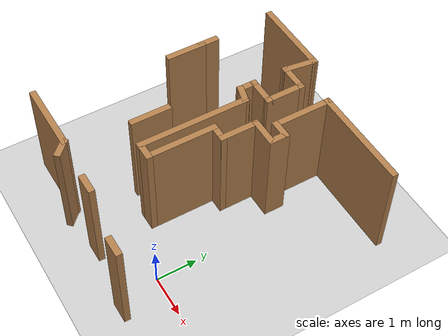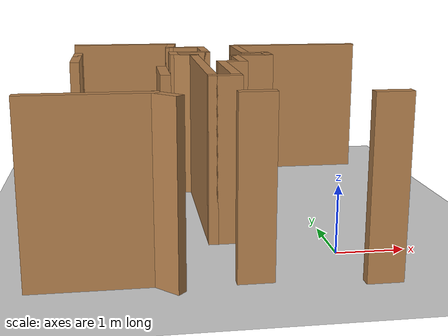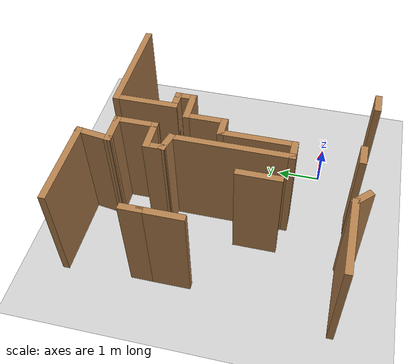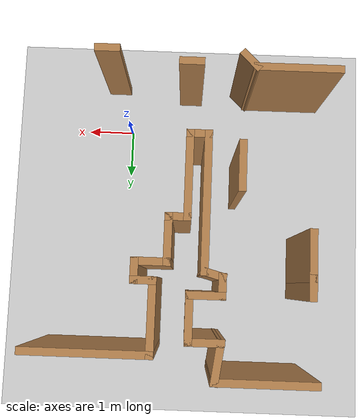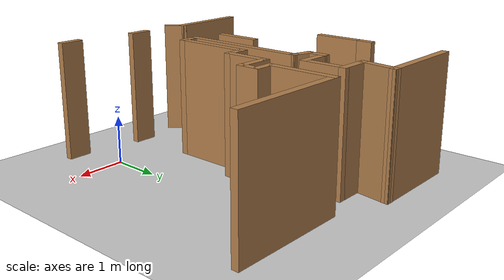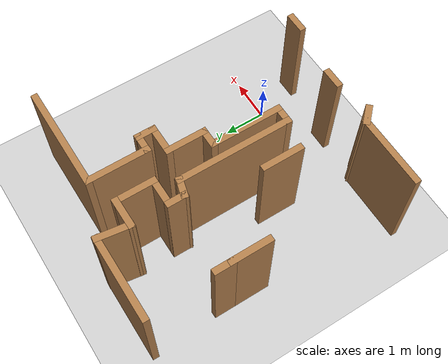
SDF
<sdf version="1.6">
 <world name="default">
  <model name="ground_plane">
   <static>1</static>
   <link name="link">
    <collision name="collision">
     <geometry><plane><normal>0 0 1</normal><size>100 100</size></plane></geometry>
     <surface><friction><ode><mu>100</mu><mu2>50</mu2></ode></friction></surface>
    </collision>
    <visual name="visual">
     <cast_shadows>0</cast_shadows>
     <geometry><plane><normal>0 0 1</normal><size>100 100</size></plane></geometry>
     <material>
      <script><uri>file://media/materials/scripts/gazebo.material</uri><name>Gazebo/Grey</name></script>
     </material>
    </visual>
   </link>
  </model>
  <model name="map_30">
   <link name="Wall_153">
    <pose>0.680059 5.21618 0 0 -0 3.14159</pose>
    <visual name="Wall_153_Visual">
     <pose>0 0 1.25 0 -0 0</pose>
     <geometry><box><size>2.5 0.15 2.5</size></box></geometry>
     <material>
      <script><uri>file://media/materials/scripts/gazebo.material</uri><name>Gazebo/Wood</name></script>
      <ambient>1 1 1 1</ambient>
      <shader type="pixel"/>
     </material>
     <meta><layer>0</layer></meta>
    </visual>
    <collision name="Wall_153_Collision">
     <pose>0 0 1.25 0 -0 0</pose>
     <geometry><box><size>2.5 0.15 2.5</size></box></geometry>
     <surface>
      <friction>
       <ode><mu>1</mu><mu2>1</mu2><fdir1>0 0 0</fdir1><slip1>0</slip1><slip2>0</slip2></ode>
       <torsional>
        <coefficient>1</coefficient>
        <patch_radius>0</patch_radius>
        <surface_radius>0</surface_radius>
        <use_patch_radius>1</use_patch_radius>
        <ode><slip>0</slip></ode>
       </torsional>
      </friction>
      <bounce><restitution_coefficient>0</restitution_coefficient><threshold>1e+06</threshold></bounce>
      <contact>
       <collide_without_contact>0</collide_without_contact>
       <collide_without_contact_bitmask>1</collide_without_contact_bitmask>
       <collide_bitmask>1</collide_bitmask>
       <ode>
        <soft_cfm>0</soft_cfm>
        <soft_erp>0.2</soft_erp>
        <kp>1e+13</kp>
        <kd>1</kd>
        <max_vel>0.01</max_vel>
        <min_depth>0</min_depth>
       </ode>
       <bullet>
        <split_impulse>1</split_impulse>
        <split_impulse_penetration_threshold>-0.01</split_impulse_penetration_threshold>
        <soft_cfm>0</soft_cfm>
        <soft_erp>0.2</soft_erp>
        <kp>1e+13</kp>
        <kd>1</kd>
       </bullet>
      </contact>
     </surface>
    </collision>
   </link>
   <link name="Wall_154">
    <pose>-0.494941 4.54118 0 0 0 -1.5708</pose>
    <visual name="Wall_154_Visual">
     <pose>0 0 1.25 0 -0 0</pose>
     <geometry><box><size>1.5 0.15 2.5</size></box></geometry>
     <material>
      <script><uri>file://media/materials/scripts/gazebo.material</uri><name>Gazebo/Wood</name></script>
      <ambient>1 1 1 1</ambient>
      <shader type="pixel"/>
     </material>
     <meta><layer>0</layer></meta>
    </visual>
    <collision name="Wall_154_Collision">
     <pose>0 0 1.25 0 -0 0</pose>
     <geometry><box><size>1.5 0.15 2.5</size></box></geometry>
     <surface>
      <friction>
       <ode><mu>1</mu><mu2>1</mu2><fdir1>0 0 0</fdir1><slip1>0</slip1><slip2>0</slip2></ode>
       <torsional>
        <coefficient>1</coefficient>
        <patch_radius>0</patch_radius>
        <surface_radius>0</surface_radius>
        <use_patch_radius>1</use_patch_radius>
        <ode><slip>0</slip></ode>
       </torsional>
      </friction>
      <bounce><restitution_coefficient>0</restitution_coefficient><threshold>1e+06</threshold></bounce>
      <contact>
       <collide_without_contact>0</collide_without_contact>
       <collide_without_contact_bitmask>1</collide_without_contact_bitmask>
       <collide_bitmask>1</collide_bitmask>
       <ode>
        <soft_cfm>0</soft_cfm>
        <soft_erp>0.2</soft_erp>
        <kp>1e+13</kp>
        <kd>1</kd>
        <max_vel>0.01</max_vel>
        <min_depth>0</min_depth>
       </ode>
       <bullet>
        <split_impulse>1</split_impulse>
        <split_impulse_penetration_threshold>-0.01</split_impulse_penetration_threshold>
        <soft_cfm>0</soft_cfm>
        <soft_erp>0.2</soft_erp>
        <kp>1e+13</kp>
        <kd>1</kd>
       </bullet>
      </contact>
     </surface>
    </collision>
   </link>
   <link name="Wall_155">
    <pose>-0.319941 3.86618 0 0 -0 0</pose>
    <visual name="Wall_155_Visual">
     <pose>0 0 1.25 0 -0 0</pose>
     <geometry><box><size>0.5 0.15 2.5</size></box></geometry>
     <material>
      <script><uri>file://media/materials/scripts/gazebo.material</uri><name>Gazebo/Wood</name></script>
      <ambient>1 1 1 1</ambient>
      <shader type="pixel"/>
     </material>
     <meta><layer>0</layer></meta>
    </visual>
    <collision name="Wall_155_Collision">
     <pose>0 0 1.25 0 -0 0</pose>
     <geometry><box><size>0.5 0.15 2.5</size></box></geometry>
     <surface>
      <friction>
       <ode><mu>1</mu><mu2>1</mu2><fdir1>0 0 0</fdir1><slip1>0</slip1><slip2>0</slip2></ode>
       <torsional>
        <coefficient>1</coefficient>
        <patch_radius>0</patch_radius>
        <surface_radius>0</surface_radius>
        <use_patch_radius>1</use_patch_radius>
        <ode><slip>0</slip></ode>
       </torsional>
      </friction>
      <bounce><restitution_coefficient>0</restitution_coefficient><threshold>1e+06</threshold></bounce>
      <contact>
       <collide_without_contact>0</collide_without_contact>
       <collide_without_contact_bitmask>1</collide_without_contact_bitmask>
       <collide_bitmask>1</collide_bitmask>
       <ode>
        <soft_cfm>0</soft_cfm>
        <soft_erp>0.2</soft_erp>
        <kp>1e+13</kp>
        <kd>1</kd>
        <max_vel>0.01</max_vel>
        <min_depth>0</min_depth>
       </ode>
       <bullet>
        <split_impulse>1</split_impulse>
        <split_impulse_penetration_threshold>-0.01</split_impulse_penetration_threshold>
        <soft_cfm>0</soft_cfm>
        <soft_erp>0.2</soft_erp>
        <kp>1e+13</kp>
        <kd>1</kd>
       </bullet>
      </contact>
     </surface>
    </collision>
   </link>
   <link name="Wall_156">
    <pose>-0.14494 3.69118 0 0 0 -1.5708</pose>
    <visual name="Wall_156_Visual">
     <pose>0 0 1.25 0 -0 0</pose>
     <geometry><box><size>0.5 0.15 2.5</size></box></geometry>
     <material>
      <script><uri>file://media/materials/scripts/gazebo.material</uri><name>Gazebo/Wood</name></script>
      <ambient>1 1 1 1</ambient>
      <shader type="pixel"/>
     </material>
     <meta><layer>0</layer></meta>
    </visual>
    <collision name="Wall_156_Collision">
     <pose>0 0 1.25 0 -0 0</pose>
     <geometry><box><size>0.5 0.15 2.5</size></box></geometry>
     <surface>
      <friction>
       <ode><mu>1</mu><mu2>1</mu2><fdir1>0 0 0</fdir1><slip1>0</slip1><slip2>0</slip2></ode>
       <torsional>
        <coefficient>1</coefficient>
        <patch_radius>0</patch_radius>
        <surface_radius>0</surface_radius>
        <use_patch_radius>1</use_patch_radius>
        <ode><slip>0</slip></ode>
       </torsional>
      </friction>
      <bounce><restitution_coefficient>0</restitution_coefficient><threshold>1e+06</threshold></bounce>
      <contact>
       <collide_without_contact>0</collide_without_contact>
       <collide_without_contact_bitmask>1</collide_without_contact_bitmask>
       <collide_bitmask>1</collide_bitmask>
       <ode>
        <soft_cfm>0</soft_cfm>
        <soft_erp>0.2</soft_erp>
        <kp>1e+13</kp>
        <kd>1</kd>
        <max_vel>0.01</max_vel>
        <min_depth>0</min_depth>
       </ode>
       <bullet>
        <split_impulse>1</split_impulse>
        <split_impulse_penetration_threshold>-0.01</split_impulse_penetration_threshold>
        <soft_cfm>0</soft_cfm>
        <soft_erp>0.2</soft_erp>
        <kp>1e+13</kp>
        <kd>1</kd>
       </bullet>
      </contact>
     </surface>
    </collision>
   </link>
   <link name="Wall_157">
    <pose>-0.444941 3.51618 0 0 -0 3.14159</pose>
    <visual name="Wall_157_Visual">
     <pose>0 0 1.25 0 -0 0</pose>
     <geometry><box><size>0.75 0.15 2.5</size></box></geometry>
     <material>
      <script><uri>file://media/materials/scripts/gazebo.material</uri><name>Gazebo/Wood</name></script>
      <ambient>1 1 1 1</ambient>
      <shader type="pixel"/>
     </material>
     <meta><layer>0</layer></meta>
    </visual>
    <collision name="Wall_157_Collision">
     <pose>0 0 1.25 0 -0 0</pose>
     <geometry><box><size>0.75 0.15 2.5</size></box></geometry>
     <surface>
      <friction>
       <ode><mu>1</mu><mu2>1</mu2><fdir1>0 0 0</fdir1><slip1>0</slip1><slip2>0</slip2></ode>
       <torsional>
        <coefficient>1</coefficient>
        <patch_radius>0</patch_radius>
        <surface_radius>0</surface_radius>
        <use_patch_radius>1</use_patch_radius>
        <ode><slip>0</slip></ode>
       </torsional>
      </friction>
      <bounce><restitution_coefficient>0</restitution_coefficient><threshold>1e+06</threshold></bounce>
      <contact>
       <collide_without_contact>0</collide_without_contact>
       <collide_without_contact_bitmask>1</collide_without_contact_bitmask>
       <collide_bitmask>1</collide_bitmask>
       <ode>
        <soft_cfm>0</soft_cfm>
        <soft_erp>0.2</soft_erp>
        <kp>1e+13</kp>
        <kd>1</kd>
        <max_vel>0.01</max_vel>
        <min_depth>0</min_depth>
       </ode>
       <bullet>
        <split_impulse>1</split_impulse>
        <split_impulse_penetration_threshold>-0.01</split_impulse_penetration_threshold>
        <soft_cfm>0</soft_cfm>
        <soft_erp>0.2</soft_erp>
        <kp>1e+13</kp>
        <kd>1</kd>
       </bullet>
      </contact>
     </surface>
    </collision>
   </link>
   <link name="Wall_158">
    <pose>-0.744941 3.09118 0 0 0 -1.5708</pose>
    <visual name="Wall_158_Visual">
     <pose>0 0 1.25 0 -0 0</pose>
     <geometry><box><size>1 0.15 2.5</size></box></geometry>
     <material>
      <script><uri>file://media/materials/scripts/gazebo.material</uri><name>Gazebo/Wood</name></script>
      <ambient>1 1 1 1</ambient>
      <shader type="pixel"/>
     </material>
     <meta><layer>0</layer></meta>
    </visual>
    <collision name="Wall_158_Collision">
     <pose>0 0 1.25 0 -0 0</pose>
     <geometry><box><size>1 0.15 2.5</size></box></geometry>
     <surface>
      <friction>
       <ode><mu>1</mu><mu2>1</mu2><fdir1>0 0 0</fdir1><slip1>0</slip1><slip2>0</slip2></ode>
       <torsional>
        <coefficient>1</coefficient>
        <patch_radius>0</patch_radius>
        <surface_radius>0</surface_radius>
        <use_patch_radius>1</use_patch_radius>
        <ode><slip>0</slip></ode>
       </torsional>
      </friction>
      <bounce><restitution_coefficient>0</restitution_coefficient><threshold>1e+06</threshold></bounce>
      <contact>
       <collide_without_contact>0</collide_without_contact>
       <collide_without_contact_bitmask>1</collide_without_contact_bitmask>
       <collide_bitmask>1</collide_bitmask>
       <ode>
        <soft_cfm>0</soft_cfm>
        <soft_erp>0.2</soft_erp>
        <kp>1e+13</kp>
        <kd>1</kd>
        <max_vel>0.01</max_vel>
        <min_depth>0</min_depth>
       </ode>
       <bullet>
        <split_impulse>1</split_impulse>
        <split_impulse_penetration_threshold>-0.01</split_impulse_penetration_threshold>
        <soft_cfm>0</soft_cfm>
        <soft_erp>0.2</soft_erp>
        <kp>1e+13</kp>
        <kd>1</kd>
       </bullet>
      </contact>
     </surface>
    </collision>
   </link>
   <link name="Wall_16">
    <pose>-3.45506 3.89815 0 0 0 -1.5708</pose>
    <visual name="Wall_16_Visual">
     <pose>0 0 1.25 0 -0 0</pose>
     <geometry><box><size>0.5 0.15 2.5</size></box></geometry>
     <material>
      <script><uri>file://media/materials/scripts/gazebo.material</uri><name>Gazebo/Wood</name></script>
      <ambient>1 1 1 1</ambient>
      <shader type="pixel"/>
     </material>
     <meta><layer>0</layer></meta>
    </visual>
    <collision name="Wall_16_Collision">
     <pose>0 0 1.25 0 -0 0</pose>
     <geometry><box><size>0.5 0.15 2.5</size></box></geometry>
     <surface>
      <friction>
       <ode><mu>1</mu><mu2>1</mu2><fdir1>0 0 0</fdir1><slip1>0</slip1><slip2>0</slip2></ode>
       <torsional>
        <coefficient>1</coefficient>
        <patch_radius>0</patch_radius>
        <surface_radius>0</surface_radius>
        <use_patch_radius>1</use_patch_radius>
        <ode><slip>0</slip></ode>
       </torsional>
      </friction>
      <bounce><restitution_coefficient>0</restitution_coefficient><threshold>1e+06</threshold></bounce>
      <contact>
       <collide_without_contact>0</collide_without_contact>
       <collide_without_contact_bitmask>1</collide_without_contact_bitmask>
       <collide_bitmask>1</collide_bitmask>
       <ode>
        <soft_cfm>0</soft_cfm>
        <soft_erp>0.2</soft_erp>
        <kp>1e+13</kp>
        <kd>1</kd>
        <max_vel>0.01</max_vel>
        <min_depth>0</min_depth>
       </ode>
       <bullet>
        <split_impulse>1</split_impulse>
        <split_impulse_penetration_threshold>-0.01</split_impulse_penetration_threshold>
        <soft_cfm>0</soft_cfm>
        <soft_erp>0.2</soft_erp>
        <kp>1e+13</kp>
        <kd>1</kd>
       </bullet>
      </contact>
     </surface>
    </collision>
   </link>
   <link name="Wall_161">
    <pose>-0.919941 2.66618 0 0 -0 3.14159</pose>
    <visual name="Wall_161_Visual">
     <pose>0 0 1.25 0 -0 0</pose>
     <geometry><box><size>0.5 0.15 2.5</size></box></geometry>
     <material>
      <script><uri>file://media/materials/scripts/gazebo.material</uri><name>Gazebo/Wood</name></script>
      <ambient>1 1 1 1</ambient>
      <shader type="pixel"/>
     </material>
     <meta><layer>0</layer></meta>
    </visual>
    <collision name="Wall_161_Collision">
     <pose>0 0 1.25 0 -0 0</pose>
     <geometry><box><size>0.5 0.15 2.5</size></box></geometry>
     <surface>
      <friction>
       <ode><mu>1</mu><mu2>1</mu2><fdir1>0 0 0</fdir1><slip1>0</slip1><slip2>0</slip2></ode>
       <torsional>
        <coefficient>1</coefficient>
        <patch_radius>0</patch_radius>
        <surface_radius>0</surface_radius>
        <use_patch_radius>1</use_patch_radius>
        <ode><slip>0</slip></ode>
       </torsional>
      </friction>
      <bounce><restitution_coefficient>0</restitution_coefficient><threshold>1e+06</threshold></bounce>
      <contact>
       <collide_without_contact>0</collide_without_contact>
       <collide_without_contact_bitmask>1</collide_without_contact_bitmask>
       <collide_bitmask>1</collide_bitmask>
       <ode>
        <soft_cfm>0</soft_cfm>
        <soft_erp>0.2</soft_erp>
        <kp>1e+13</kp>
        <kd>1</kd>
        <max_vel>0.01</max_vel>
        <min_depth>0</min_depth>
       </ode>
       <bullet>
        <split_impulse>1</split_impulse>
        <split_impulse_penetration_threshold>-0.01</split_impulse_penetration_threshold>
        <soft_cfm>0</soft_cfm>
        <soft_erp>0.2</soft_erp>
        <kp>1e+13</kp>
        <kd>1</kd>
       </bullet>
      </contact>
     </surface>
    </collision>
   </link>
   <link name="Wall_162">
    <pose>-1.09494 1.86618 0 0 0 -1.5708</pose>
    <visual name="Wall_162_Visual">
     <pose>0 0 1.25 0 -0 0</pose>
     <geometry><box><size>1.75 0.15 2.5</size></box></geometry>
     <material>
      <script><uri>file://media/materials/scripts/gazebo.material</uri><name>Gazebo/Wood</name></script>
      <ambient>1 1 1 1</ambient>
      <shader type="pixel"/>
     </material>
     <meta><layer>0</layer></meta>
    </visual>
    <collision name="Wall_162_Collision">
     <pose>0 0 1.25 0 -0 0</pose>
     <geometry><box><size>1.75 0.15 2.5</size></box></geometry>
     <surface>
      <friction>
       <ode><mu>1</mu><mu2>1</mu2><fdir1>0 0 0</fdir1><slip1>0</slip1><slip2>0</slip2></ode>
       <torsional>
        <coefficient>1</coefficient>
        <patch_radius>0</patch_radius>
        <surface_radius>0</surface_radius>
        <use_patch_radius>1</use_patch_radius>
        <ode><slip>0</slip></ode>
       </torsional>
      </friction>
      <bounce><restitution_coefficient>0</restitution_coefficient><threshold>1e+06</threshold></bounce>
      <contact>
       <collide_without_contact>0</collide_without_contact>
       <collide_without_contact_bitmask>1</collide_without_contact_bitmask>
       <collide_bitmask>1</collide_bitmask>
       <ode>
        <soft_cfm>0</soft_cfm>
        <soft_erp>0.2</soft_erp>
        <kp>1e+13</kp>
        <kd>1</kd>
        <max_vel>0.01</max_vel>
        <min_depth>0</min_depth>
       </ode>
       <bullet>
        <split_impulse>1</split_impulse>
        <split_impulse_penetration_threshold>-0.01</split_impulse_penetration_threshold>
        <soft_cfm>0</soft_cfm>
        <soft_erp>0.2</soft_erp>
        <kp>1e+13</kp>
        <kd>1</kd>
       </bullet>
      </contact>
     </surface>
    </collision>
   </link>
   <link name="Wall_163">
    <pose>-1.26994 1.06618 0 0 -0 3.14159</pose>
    <visual name="Wall_163_Visual">
     <pose>0 0 1.25 0 -0 0</pose>
     <geometry><box><size>0.5 0.15 2.5</size></box></geometry>
     <material>
      <script><uri>file://media/materials/scripts/gazebo.material</uri><name>Gazebo/Wood</name></script>
      <ambient>1 1 1 1</ambient>
      <shader type="pixel"/>
     </material>
     <meta><layer>0</layer></meta>
    </visual>
    <collision name="Wall_163_Collision">
     <pose>0 0 1.25 0 -0 0</pose>
     <geometry><box><size>0.5 0.15 2.5</size></box></geometry>
     <surface>
      <friction>
       <ode><mu>1</mu><mu2>1</mu2><fdir1>0 0 0</fdir1><slip1>0</slip1><slip2>0</slip2></ode>
       <torsional>
        <coefficient>1</coefficient>
        <patch_radius>0</patch_radius>
        <surface_radius>0</surface_radius>
        <use_patch_radius>1</use_patch_radius>
        <ode><slip>0</slip></ode>
       </torsional>
      </friction>
      <bounce><restitution_coefficient>0</restitution_coefficient><threshold>1e+06</threshold></bounce>
      <contact>
       <collide_without_contact>0</collide_without_contact>
       <collide_without_contact_bitmask>1</collide_without_contact_bitmask>
       <collide_bitmask>1</collide_bitmask>
       <ode>
        <soft_cfm>0</soft_cfm>
        <soft_erp>0.2</soft_erp>
        <kp>1e+13</kp>
        <kd>1</kd>
        <max_vel>0.01</max_vel>
        <min_depth>0</min_depth>
       </ode>
       <bullet>
        <split_impulse>1</split_impulse>
        <split_impulse_penetration_threshold>-0.01</split_impulse_penetration_threshold>
        <soft_cfm>0</soft_cfm>
        <soft_erp>0.2</soft_erp>
        <kp>1e+13</kp>
        <kd>1</kd>
       </bullet>
      </contact>
     </surface>
    </collision>
   </link>
   <link name="Wall_164">
    <pose>-1.44494 2.36618 0 0 -0 1.5708</pose>
    <visual name="Wall_164_Visual">
     <pose>0 0 1.25 0 -0 0</pose>
     <geometry><box><size>2.75 0.15 2.5</size></box></geometry>
     <material>
      <script><uri>file://media/materials/scripts/gazebo.material</uri><name>Gazebo/Wood</name></script>
      <ambient>1 1 1 1</ambient>
      <shader type="pixel"/>
     </material>
     <meta><layer>0</layer></meta>
    </visual>
    <collision name="Wall_164_Collision">
     <pose>0 0 1.25 0 -0 0</pose>
     <geometry><box><size>2.75 0.15 2.5</size></box></geometry>
     <surface>
      <friction>
       <ode><mu>1</mu><mu2>1</mu2><fdir1>0 0 0</fdir1><slip1>0</slip1><slip2>0</slip2></ode>
       <torsional>
        <coefficient>1</coefficient>
        <patch_radius>0</patch_radius>
        <surface_radius>0</surface_radius>
        <use_patch_radius>1</use_patch_radius>
        <ode><slip>0</slip></ode>
       </torsional>
      </friction>
      <bounce><restitution_coefficient>0</restitution_coefficient><threshold>1e+06</threshold></bounce>
      <contact>
       <collide_without_contact>0</collide_without_contact>
       <collide_without_contact_bitmask>1</collide_without_contact_bitmask>
       <collide_bitmask>1</collide_bitmask>
       <ode>
        <soft_cfm>0</soft_cfm>
        <soft_erp>0.2</soft_erp>
        <kp>1e+13</kp>
        <kd>1</kd>
        <max_vel>0.01</max_vel>
        <min_depth>0</min_depth>
       </ode>
       <bullet>
        <split_impulse>1</split_impulse>
        <split_impulse_penetration_threshold>-0.01</split_impulse_penetration_threshold>
        <soft_cfm>0</soft_cfm>
        <soft_erp>0.2</soft_erp>
        <kp>1e+13</kp>
        <kd>1</kd>
       </bullet>
      </contact>
     </surface>
    </collision>
   </link>
   <link name="Wall_165">
    <pose>-1.61398 3.71148 0 0 -0 2.87979</pose>
    <visual name="Wall_165_Visual">
     <pose>0 0 1.25 0 -0 0</pose>
     <geometry><box><size>0.5 0.15 2.5</size></box></geometry>
     <material>
      <script><uri>file://media/materials/scripts/gazebo.material</uri><name>Gazebo/Wood</name></script>
      <ambient>1 1 1 1</ambient>
      <shader type="pixel"/>
     </material>
     <meta><layer>0</layer></meta>
    </visual>
    <collision name="Wall_165_Collision">
     <pose>0 0 1.25 0 -0 0</pose>
     <geometry><box><size>0.5 0.15 2.5</size></box></geometry>
     <surface>
      <friction>
       <ode><mu>1</mu><mu2>1</mu2><fdir1>0 0 0</fdir1><slip1>0</slip1><slip2>0</slip2></ode>
       <torsional>
        <coefficient>1</coefficient>
        <patch_radius>0</patch_radius>
        <surface_radius>0</surface_radius>
        <use_patch_radius>1</use_patch_radius>
        <ode><slip>0</slip></ode>
       </torsional>
      </friction>
      <bounce><restitution_coefficient>0</restitution_coefficient><threshold>1e+06</threshold></bounce>
      <contact>
       <collide_without_contact>0</collide_without_contact>
       <collide_without_contact_bitmask>1</collide_without_contact_bitmask>
       <collide_bitmask>1</collide_bitmask>
       <ode>
        <soft_cfm>0</soft_cfm>
        <soft_erp>0.2</soft_erp>
        <kp>1e+13</kp>
        <kd>1</kd>
        <max_vel>0.01</max_vel>
        <min_depth>0</min_depth>
       </ode>
       <bullet>
        <split_impulse>1</split_impulse>
        <split_impulse_penetration_threshold>-0.01</split_impulse_penetration_threshold>
        <soft_cfm>0</soft_cfm>
        <soft_erp>0.2</soft_erp>
        <kp>1e+13</kp>
        <kd>1</kd>
       </bullet>
      </contact>
     </surface>
    </collision>
   </link>
   <link name="Wall_166">
    <pose>-1.78302 3.93177 0 0 -0 1.5708</pose>
    <visual name="Wall_166_Visual">
     <pose>0 0 1.25 0 -0 0</pose>
     <geometry><box><size>0.5 0.15 2.5</size></box></geometry>
     <material>
      <script><uri>file://media/materials/scripts/gazebo.material</uri><name>Gazebo/Wood</name></script>
      <ambient>1 1 1 1</ambient>
      <shader type="pixel"/>
     </material>
     <meta><layer>0</layer></meta>
    </visual>
    <collision name="Wall_166_Collision">
     <pose>0 0 1.25 0 -0 0</pose>
     <geometry><box><size>0.5 0.15 2.5</size></box></geometry>
     <surface>
      <friction>
       <ode><mu>1</mu><mu2>1</mu2><fdir1>0 0 0</fdir1><slip1>0</slip1><slip2>0</slip2></ode>
       <torsional>
        <coefficient>1</coefficient>
        <patch_radius>0</patch_radius>
        <surface_radius>0</surface_radius>
        <use_patch_radius>1</use_patch_radius>
        <ode><slip>0</slip></ode>
       </torsional>
      </friction>
      <bounce><restitution_coefficient>0</restitution_coefficient><threshold>1e+06</threshold></bounce>
      <contact>
       <collide_without_contact>0</collide_without_contact>
       <collide_without_contact_bitmask>1</collide_without_contact_bitmask>
       <collide_bitmask>1</collide_bitmask>
       <ode>
        <soft_cfm>0</soft_cfm>
        <soft_erp>0.2</soft_erp>
        <kp>1e+13</kp>
        <kd>1</kd>
        <max_vel>0.01</max_vel>
        <min_depth>0</min_depth>
       </ode>
       <bullet>
        <split_impulse>1</split_impulse>
        <split_impulse_penetration_threshold>-0.01</split_impulse_penetration_threshold>
        <soft_cfm>0</soft_cfm>
        <soft_erp>0.2</soft_erp>
        <kp>1e+13</kp>
        <kd>1</kd>
       </bullet>
      </contact>
     </surface>
    </collision>
   </link>
   <link name="Wall_171">
    <pose>-1.48301 4.10677 0 0 -0 0</pose>
    <visual name="Wall_171_Visual">
     <pose>0 0 1.25 0 -0 0</pose>
     <geometry><box><size>0.75 0.15 2.5</size></box></geometry>
     <material>
      <script><uri>file://media/materials/scripts/gazebo.material</uri><name>Gazebo/Wood</name></script>
      <ambient>1 1 1 1</ambient>
      <shader type="pixel"/>
     </material>
     <meta><layer>0</layer></meta>
    </visual>
    <collision name="Wall_171_Collision">
     <pose>0 0 1.25 0 -0 0</pose>
     <geometry><box><size>0.75 0.15 2.5</size></box></geometry>
     <surface>
      <friction>
       <ode><mu>1</mu><mu2>1</mu2><fdir1>0 0 0</fdir1><slip1>0</slip1><slip2>0</slip2></ode>
       <torsional>
        <coefficient>1</coefficient>
        <patch_radius>0</patch_radius>
        <surface_radius>0</surface_radius>
        <use_patch_radius>1</use_patch_radius>
        <ode><slip>0</slip></ode>
       </torsional>
      </friction>
      <bounce><restitution_coefficient>0</restitution_coefficient><threshold>1e+06</threshold></bounce>
      <contact>
       <collide_without_contact>0</collide_without_contact>
       <collide_without_contact_bitmask>1</collide_without_contact_bitmask>
       <collide_bitmask>1</collide_bitmask>
       <ode>
        <soft_cfm>0</soft_cfm>
        <soft_erp>0.2</soft_erp>
        <kp>1e+13</kp>
        <kd>1</kd>
        <max_vel>0.01</max_vel>
        <min_depth>0</min_depth>
       </ode>
       <bullet>
        <split_impulse>1</split_impulse>
        <split_impulse_penetration_threshold>-0.01</split_impulse_penetration_threshold>
        <soft_cfm>0</soft_cfm>
        <soft_erp>0.2</soft_erp>
        <kp>1e+13</kp>
        <kd>1</kd>
       </bullet>
      </contact>
     </surface>
    </collision>
   </link>
   <link name="Wall_172">
    <pose>-1.18301 4.53177 0 0 -0 1.5708</pose>
    <visual name="Wall_172_Visual">
     <pose>0 0 1.25 0 -0 0</pose>
     <geometry><box><size>1 0.15 2.5</size></box></geometry>
     <material>
      <script><uri>file://media/materials/scripts/gazebo.material</uri><name>Gazebo/Wood</name></script>
      <ambient>1 1 1 1</ambient>
      <shader type="pixel"/>
     </material>
     <meta><layer>0</layer></meta>
    </visual>
    <collision name="Wall_172_Collision">
     <pose>0 0 1.25 0 -0 0</pose>
     <geometry><box><size>1 0.15 2.5</size></box></geometry>
     <surface>
      <friction>
       <ode><mu>1</mu><mu2>1</mu2><fdir1>0 0 0</fdir1><slip1>0</slip1><slip2>0</slip2></ode>
       <torsional>
        <coefficient>1</coefficient>
        <patch_radius>0</patch_radius>
        <surface_radius>0</surface_radius>
        <use_patch_radius>1</use_patch_radius>
        <ode><slip>0</slip></ode>
       </torsional>
      </friction>
      <bounce><restitution_coefficient>0</restitution_coefficient><threshold>1e+06</threshold></bounce>
      <contact>
       <collide_without_contact>0</collide_without_contact>
       <collide_without_contact_bitmask>1</collide_without_contact_bitmask>
       <collide_bitmask>1</collide_bitmask>
       <ode>
        <soft_cfm>0</soft_cfm>
        <soft_erp>0.2</soft_erp>
        <kp>1e+13</kp>
        <kd>1</kd>
        <max_vel>0.01</max_vel>
        <min_depth>0</min_depth>
       </ode>
       <bullet>
        <split_impulse>1</split_impulse>
        <split_impulse_penetration_threshold>-0.01</split_impulse_penetration_threshold>
        <soft_cfm>0</soft_cfm>
        <soft_erp>0.2</soft_erp>
        <kp>1e+13</kp>
        <kd>1</kd>
       </bullet>
      </contact>
     </surface>
    </collision>
   </link>
   <link name="Wall_173">
    <pose>-1.48301 4.95677 0 0 -0 3.14159</pose>
    <visual name="Wall_173_Visual">
     <pose>0 0 1.25 0 -0 0</pose>
     <geometry><box><size>0.75 0.15 2.5</size></box></geometry>
     <material>
      <script><uri>file://media/materials/scripts/gazebo.material</uri><name>Gazebo/Wood</name></script>
      <ambient>1 1 1 1</ambient>
      <shader type="pixel"/>
     </material>
     <meta><layer>0</layer></meta>
    </visual>
    <collision name="Wall_173_Collision">
     <pose>0 0 1.25 0 -0 0</pose>
     <geometry><box><size>0.75 0.15 2.5</size></box></geometry>
     <surface>
      <friction>
       <ode><mu>1</mu><mu2>1</mu2><fdir1>0 0 0</fdir1><slip1>0</slip1><slip2>0</slip2></ode>
       <torsional>
        <coefficient>1</coefficient>
        <patch_radius>0</patch_radius>
        <surface_radius>0</surface_radius>
        <use_patch_radius>1</use_patch_radius>
        <ode><slip>0</slip></ode>
       </torsional>
      </friction>
      <bounce><restitution_coefficient>0</restitution_coefficient><threshold>1e+06</threshold></bounce>
      <contact>
       <collide_without_contact>0</collide_without_contact>
       <collide_without_contact_bitmask>1</collide_without_contact_bitmask>
       <collide_bitmask>1</collide_bitmask>
       <ode>
        <soft_cfm>0</soft_cfm>
        <soft_erp>0.2</soft_erp>
        <kp>1e+13</kp>
        <kd>1</kd>
        <max_vel>0.01</max_vel>
        <min_depth>0</min_depth>
       </ode>
       <bullet>
        <split_impulse>1</split_impulse>
        <split_impulse_penetration_threshold>-0.01</split_impulse_penetration_threshold>
        <soft_cfm>0</soft_cfm>
        <soft_erp>0.2</soft_erp>
        <kp>1e+13</kp>
        <kd>1</kd>
       </bullet>
      </contact>
     </surface>
    </collision>
   </link>
   <link name="Wall_174">
    <pose>-1.73368 5.3046 0 0 -0 1.42991</pose>
    <visual name="Wall_174_Visual">
     <pose>0 0 1.25 0 -0 0</pose>
     <geometry><box><size>0.852629 0.15 2.5</size></box></geometry>
     <material>
      <script><uri>file://media/materials/scripts/gazebo.material</uri><name>Gazebo/Wood</name></script>
      <ambient>1 1 1 1</ambient>
      <shader type="pixel"/>
     </material>
     <meta><layer>0</layer></meta>
    </visual>
    <collision name="Wall_174_Collision">
     <pose>0 0 1.25 0 -0 0</pose>
     <geometry><box><size>0.852629 0.15 2.5</size></box></geometry>
     <surface>
      <friction>
       <ode><mu>1</mu><mu2>1</mu2><fdir1>0 0 0</fdir1><slip1>0</slip1><slip2>0</slip2></ode>
       <torsional>
        <coefficient>1</coefficient>
        <patch_radius>0</patch_radius>
        <surface_radius>0</surface_radius>
        <use_patch_radius>1</use_patch_radius>
        <ode><slip>0</slip></ode>
       </torsional>
      </friction>
      <bounce><restitution_coefficient>0</restitution_coefficient><threshold>1e+06</threshold></bounce>
      <contact>
       <collide_without_contact>0</collide_without_contact>
       <collide_without_contact_bitmask>1</collide_without_contact_bitmask>
       <collide_bitmask>1</collide_bitmask>
       <ode>
        <soft_cfm>0</soft_cfm>
        <soft_erp>0.2</soft_erp>
        <kp>1e+13</kp>
        <kd>1</kd>
        <max_vel>0.01</max_vel>
        <min_depth>0</min_depth>
       </ode>
       <bullet>
        <split_impulse>1</split_impulse>
        <split_impulse_penetration_threshold>-0.01</split_impulse_penetration_threshold>
        <soft_cfm>0</soft_cfm>
        <soft_erp>0.2</soft_erp>
        <kp>1e+13</kp>
        <kd>1</kd>
       </bullet>
      </contact>
     </surface>
    </collision>
   </link>
   <link name="Wall_187">
    <pose>-2.10506 1.64815 0 0 -0 1.5708</pose>
    <visual name="Wall_187_Visual">
     <pose>0 0 1.25 0 -0 0</pose>
     <geometry><box><size>1 0.15 2.5</size></box></geometry>
     <material>
      <script><uri>file://media/materials/scripts/gazebo.material</uri><name>Gazebo/Wood</name></script>
      <ambient>1 1 1 1</ambient>
      <shader type="pixel"/>
     </material>
     <meta><layer>0</layer></meta>
    </visual>
    <collision name="Wall_187_Collision">
     <pose>0 0 1.25 0 -0 0</pose>
     <geometry><box><size>1 0.15 2.5</size></box></geometry>
     <surface>
      <friction>
       <ode><mu>1</mu><mu2>1</mu2><fdir1>0 0 0</fdir1><slip1>0</slip1><slip2>0</slip2></ode>
       <torsional>
        <coefficient>1</coefficient>
        <patch_radius>0</patch_radius>
        <surface_radius>0</surface_radius>
        <use_patch_radius>1</use_patch_radius>
        <ode><slip>0</slip></ode>
       </torsional>
      </friction>
      <bounce><restitution_coefficient>0</restitution_coefficient><threshold>1e+06</threshold></bounce>
      <contact>
       <collide_without_contact>0</collide_without_contact>
       <collide_without_contact_bitmask>1</collide_without_contact_bitmask>
       <collide_bitmask>1</collide_bitmask>
       <ode>
        <soft_cfm>0</soft_cfm>
        <soft_erp>0.2</soft_erp>
        <kp>1e+13</kp>
        <kd>1</kd>
        <max_vel>0.01</max_vel>
        <min_depth>0</min_depth>
       </ode>
       <bullet>
        <split_impulse>1</split_impulse>
        <split_impulse_penetration_threshold>-0.01</split_impulse_penetration_threshold>
        <soft_cfm>0</soft_cfm>
        <soft_erp>0.2</soft_erp>
        <kp>1e+13</kp>
        <kd>1</kd>
       </bullet>
      </contact>
     </surface>
    </collision>
   </link>
   <link name="Wall_198">
    <pose>0.572406 -0.569697 0 0 -0 3.14159</pose>
    <visual name="Wall_198_Visual">
     <pose>0 0 1.25 0 -0 0</pose>
     <geometry><box><size>0.5 0.15 2.5</size></box></geometry>
     <material>
      <script><uri>file://media/materials/scripts/gazebo.material</uri><name>Gazebo/Wood</name></script>
      <ambient>1 1 1 1</ambient>
      <shader type="pixel"/>
     </material>
     <meta><layer>0</layer></meta>
    </visual>
    <collision name="Wall_198_Collision">
     <pose>0 0 1.25 0 -0 0</pose>
     <geometry><box><size>0.5 0.15 2.5</size></box></geometry>
     <surface>
      <friction>
       <ode><mu>1</mu><mu2>1</mu2><fdir1>0 0 0</fdir1><slip1>0</slip1><slip2>0</slip2></ode>
       <torsional>
        <coefficient>1</coefficient>
        <patch_radius>0</patch_radius>
        <surface_radius>0</surface_radius>
        <use_patch_radius>1</use_patch_radius>
        <ode><slip>0</slip></ode>
       </torsional>
      </friction>
      <bounce><restitution_coefficient>0</restitution_coefficient><threshold>1e+06</threshold></bounce>
      <contact>
       <collide_without_contact>0</collide_without_contact>
       <collide_without_contact_bitmask>1</collide_without_contact_bitmask>
       <collide_bitmask>1</collide_bitmask>
       <ode>
        <soft_cfm>0</soft_cfm>
        <soft_erp>0.2</soft_erp>
        <kp>1e+13</kp>
        <kd>1</kd>
        <max_vel>0.01</max_vel>
        <min_depth>0</min_depth>
       </ode>
       <bullet>
        <split_impulse>1</split_impulse>
        <split_impulse_penetration_threshold>-0.01</split_impulse_penetration_threshold>
        <soft_cfm>0</soft_cfm>
        <soft_erp>0.2</soft_erp>
        <kp>1e+13</kp>
        <kd>1</kd>
       </bullet>
      </contact>
     </surface>
    </collision>
   </link>
   <link name="Wall_21">
    <pose>-3.45506 3.29815 0 0 0 -1.5708</pose>
    <visual name="Wall_21_Visual">
     <pose>0 0 1.25 0 -0 0</pose>
     <geometry><box><size>1 0.15 2.5</size></box></geometry>
     <material>
      <script><uri>file://media/materials/scripts/gazebo.material</uri><name>Gazebo/Wood</name></script>
      <ambient>1 1 1 1</ambient>
      <shader type="pixel"/>
     </material>
     <meta><layer>0</layer></meta>
    </visual>
    <collision name="Wall_21_Collision">
     <pose>0 0 1.25 0 -0 0</pose>
     <geometry><box><size>1 0.15 2.5</size></box></geometry>
     <surface>
      <friction>
       <ode><mu>1</mu><mu2>1</mu2><fdir1>0 0 0</fdir1><slip1>0</slip1><slip2>0</slip2></ode>
       <torsional>
        <coefficient>1</coefficient>
        <patch_radius>0</patch_radius>
        <surface_radius>0</surface_radius>
        <use_patch_radius>1</use_patch_radius>
        <ode><slip>0</slip></ode>
       </torsional>
      </friction>
      <bounce><restitution_coefficient>0</restitution_coefficient><threshold>1e+06</threshold></bounce>
      <contact>
       <collide_without_contact>0</collide_without_contact>
       <collide_without_contact_bitmask>1</collide_without_contact_bitmask>
       <collide_bitmask>1</collide_bitmask>
       <ode>
        <soft_cfm>0</soft_cfm>
        <soft_erp>0.2</soft_erp>
        <kp>1e+13</kp>
        <kd>1</kd>
        <max_vel>0.01</max_vel>
        <min_depth>0</min_depth>
       </ode>
       <bullet>
        <split_impulse>1</split_impulse>
        <split_impulse_penetration_threshold>-0.01</split_impulse_penetration_threshold>
        <soft_cfm>0</soft_cfm>
        <soft_erp>0.2</soft_erp>
        <kp>1e+13</kp>
        <kd>1</kd>
       </bullet>
      </contact>
     </surface>
    </collision>
   </link>
   <link name="Wall_3">
    <pose>-2.60935 5.65244 0 0 -0 3.14159</pose>
    <visual name="Wall_3_Visual">
     <pose>0 0 1.25 0 -0 0</pose>
     <geometry><box><size>2 0.15 2.5</size></box></geometry>
     <material>
      <script><uri>file://media/materials/scripts/gazebo.material</uri><name>Gazebo/Wood</name></script>
      <ambient>1 1 1 1</ambient>
      <shader type="pixel"/>
     </material>
     <meta><layer>0</layer></meta>
    </visual>
    <collision name="Wall_3_Collision">
     <pose>0 0 1.25 0 -0 0</pose>
     <geometry><box><size>2 0.15 2.5</size></box></geometry>
     <surface>
      <friction>
       <ode><mu>1</mu><mu2>1</mu2><fdir1>0 0 0</fdir1><slip1>0</slip1><slip2>0</slip2></ode>
       <torsional>
        <coefficient>1</coefficient>
        <patch_radius>0</patch_radius>
        <surface_radius>0</surface_radius>
        <use_patch_radius>1</use_patch_radius>
        <ode><slip>0</slip></ode>
       </torsional>
      </friction>
      <bounce><restitution_coefficient>0</restitution_coefficient><threshold>1e+06</threshold></bounce>
      <contact>
       <collide_without_contact>0</collide_without_contact>
       <collide_without_contact_bitmask>1</collide_without_contact_bitmask>
       <collide_bitmask>1</collide_bitmask>
       <ode>
        <soft_cfm>0</soft_cfm>
        <soft_erp>0.2</soft_erp>
        <kp>1e+13</kp>
        <kd>1</kd>
        <max_vel>0.01</max_vel>
        <min_depth>0</min_depth>
       </ode>
       <bullet>
        <split_impulse>1</split_impulse>
        <split_impulse_penetration_threshold>-0.01</split_impulse_penetration_threshold>
        <soft_cfm>0</soft_cfm>
        <soft_erp>0.2</soft_erp>
        <kp>1e+13</kp>
        <kd>1</kd>
       </bullet>
      </contact>
     </surface>
    </collision>
   </link>
   <link name="Wall_38">
    <pose>-3.14288 -0.293918 0 0 -0 0</pose>
    <visual name="Wall_38_Visual">
     <pose>0 0 1.25 0 -0 0</pose>
     <geometry><box><size>1.75 0.15 2.5</size></box></geometry>
     <material>
      <script><uri>file://media/materials/scripts/gazebo.material</uri><name>Gazebo/Wood</name></script>
      <ambient>1 1 1 1</ambient>
      <shader type="pixel"/>
     </material>
     <meta><layer>0</layer></meta>
    </visual>
    <collision name="Wall_38_Collision">
     <pose>0 0 1.25 0 -0 0</pose>
     <geometry><box><size>1.75 0.15 2.5</size></box></geometry>
     <surface>
      <friction>
       <ode><mu>1</mu><mu2>1</mu2><fdir1>0 0 0</fdir1><slip1>0</slip1><slip2>0</slip2></ode>
       <torsional>
        <coefficient>1</coefficient>
        <patch_radius>0</patch_radius>
        <surface_radius>0</surface_radius>
        <use_patch_radius>1</use_patch_radius>
        <ode><slip>0</slip></ode>
       </torsional>
      </friction>
      <bounce><restitution_coefficient>0</restitution_coefficient><threshold>1e+06</threshold></bounce>
      <contact>
       <collide_without_contact>0</collide_without_contact>
       <collide_without_contact_bitmask>1</collide_without_contact_bitmask>
       <collide_bitmask>1</collide_bitmask>
       <ode>
        <soft_cfm>0</soft_cfm>
        <soft_erp>0.2</soft_erp>
        <kp>1e+13</kp>
        <kd>1</kd>
        <max_vel>0.01</max_vel>
        <min_depth>0</min_depth>
       </ode>
       <bullet>
        <split_impulse>1</split_impulse>
        <split_impulse_penetration_threshold>-0.01</split_impulse_penetration_threshold>
        <soft_cfm>0</soft_cfm>
        <soft_erp>0.2</soft_erp>
        <kp>1e+13</kp>
        <kd>1</kd>
       </bullet>
      </contact>
     </surface>
    </collision>
   </link>
   <link name="Wall_39">
    <pose>-2.21914 -0.417661 0 0 0 -0.785398</pose>
    <visual name="Wall_39_Visual">
     <pose>0 0 1.25 0 -0 0</pose>
     <geometry><box><size>0.5 0.15 2.5</size></box></geometry>
     <material>
      <script><uri>file://media/materials/scripts/gazebo.material</uri><name>Gazebo/Wood</name></script>
      <ambient>1 1 1 1</ambient>
      <shader type="pixel"/>
     </material>
     <meta><layer>0</layer></meta>
    </visual>
    <collision name="Wall_39_Collision">
     <pose>0 0 1.25 0 -0 0</pose>
     <geometry><box><size>0.5 0.15 2.5</size></box></geometry>
     <surface>
      <friction>
       <ode><mu>1</mu><mu2>1</mu2><fdir1>0 0 0</fdir1><slip1>0</slip1><slip2>0</slip2></ode>
       <torsional>
        <coefficient>1</coefficient>
        <patch_radius>0</patch_radius>
        <surface_radius>0</surface_radius>
        <use_patch_radius>1</use_patch_radius>
        <ode><slip>0</slip></ode>
       </torsional>
      </friction>
      <bounce><restitution_coefficient>0</restitution_coefficient><threshold>1e+06</threshold></bounce>
      <contact>
       <collide_without_contact>0</collide_without_contact>
       <collide_without_contact_bitmask>1</collide_without_contact_bitmask>
       <collide_bitmask>1</collide_bitmask>
       <ode>
        <soft_cfm>0</soft_cfm>
        <soft_erp>0.2</soft_erp>
        <kp>1e+13</kp>
        <kd>1</kd>
        <max_vel>0.01</max_vel>
        <min_depth>0</min_depth>
       </ode>
       <bullet>
        <split_impulse>1</split_impulse>
        <split_impulse_penetration_threshold>-0.01</split_impulse_penetration_threshold>
        <soft_cfm>0</soft_cfm>
        <soft_erp>0.2</soft_erp>
        <kp>1e+13</kp>
        <kd>1</kd>
       </bullet>
      </contact>
     </surface>
    </collision>
   </link>
   <link name="Wall_53">
    <pose>-1.07919 -0.361521 0 0 -0 0</pose>
    <visual name="Wall_53_Visual">
     <pose>0 0 1.25 0 -0 0</pose>
     <geometry><box><size>0.5 0.15 2.5</size></box></geometry>
     <material>
      <script><uri>file://media/materials/scripts/gazebo.material</uri><name>Gazebo/Wood</name></script>
      <ambient>1 1 1 1</ambient>
      <shader type="pixel"/>
     </material>
     <meta><layer>0</layer></meta>
    </visual>
    <collision name="Wall_53_Collision">
     <pose>0 0 1.25 0 -0 0</pose>
     <geometry><box><size>0.5 0.15 2.5</size></box></geometry>
     <surface>
      <friction>
       <ode><mu>1</mu><mu2>1</mu2><fdir1>0 0 0</fdir1><slip1>0</slip1><slip2>0</slip2></ode>
       <torsional>
        <coefficient>1</coefficient>
        <patch_radius>0</patch_radius>
        <surface_radius>0</surface_radius>
        <use_patch_radius>1</use_patch_radius>
        <ode><slip>0</slip></ode>
       </torsional>
      </friction>
      <bounce><restitution_coefficient>0</restitution_coefficient><threshold>1e+06</threshold></bounce>
      <contact>
       <collide_without_contact>0</collide_without_contact>
       <collide_without_contact_bitmask>1</collide_without_contact_bitmask>
       <collide_bitmask>1</collide_bitmask>
       <ode>
        <soft_cfm>0</soft_cfm>
        <soft_erp>0.2</soft_erp>
        <kp>1e+13</kp>
        <kd>1</kd>
        <max_vel>0.01</max_vel>
        <min_depth>0</min_depth>
       </ode>
       <bullet>
        <split_impulse>1</split_impulse>
        <split_impulse_penetration_threshold>-0.01</split_impulse_penetration_threshold>
        <soft_cfm>0</soft_cfm>
        <soft_erp>0.2</soft_erp>
        <kp>1e+13</kp>
        <kd>1</kd>
       </bullet>
      </contact>
     </surface>
    </collision>
   </link>
   <static>1</static>
   <pose>-0.242413 -0.443035 0 0 -0 0</pose>
  </model>
 </world>
</sdf>
